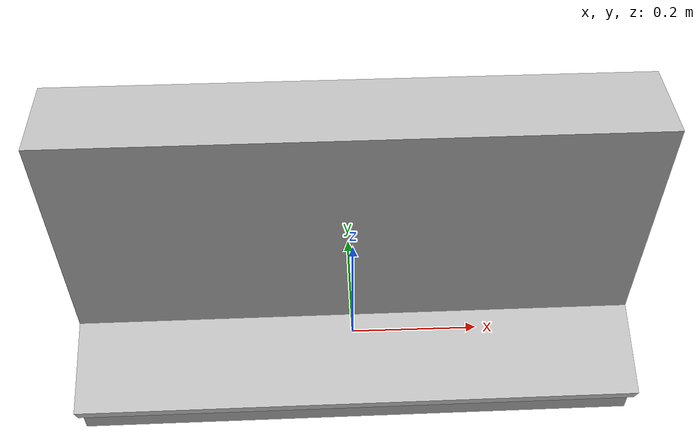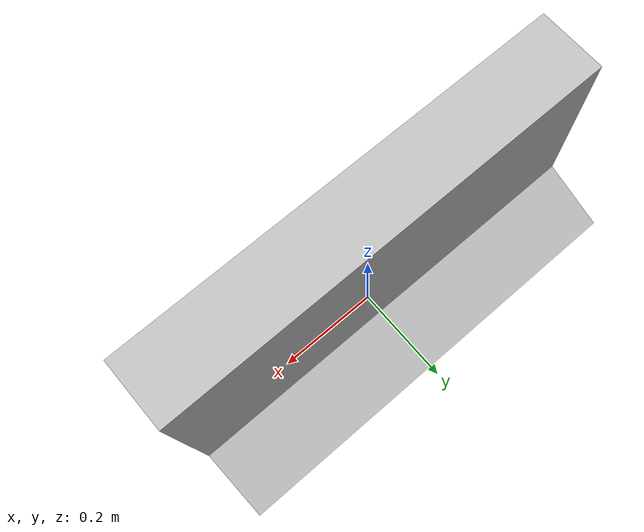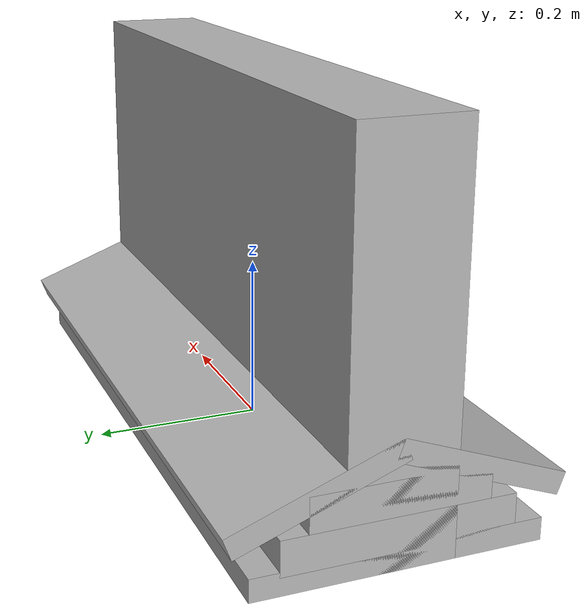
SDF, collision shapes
<?xml version="1.0" ?>
<sdf version="1.4">
  <model name="barrier_top">
    <static>true</static>
    <link name="link">
      <visual name="visual">
        <geometry>
          <mesh>
            <uri>model://jersey_barrier_small/meshes/jersey_barrier_small.dae</uri>
	    <scale> 0.2 0.4 0.4 </scale>
          </mesh>
        </geometry>
      </visual>

      <collision name="upright">
        <pose>0 0 0.2286 0 0 0</pose>
        <geometry>
          <box>
            <size>0.813084 0.12252 0.4572</size>
          </box>
        </geometry>
      </collision>

      <collision name="base">
        <pose>0 0 0.0129032 0 0 0</pose>
        <geometry>
          <box>
            <size>0.813084 0.32428 0.0258064</size>
          </box>
        </geometry>
      </collision>

      <collision name="base2">
        <pose>0 0 0.04 0 0 0</pose>
        <geometry>
          <box>
            <size>0.813084 0.26 0.04</size>
          </box>
        </geometry>
      </collision>

      <collision name="base3">
        <pose>0 0 0.08 0 0 0</pose>
        <geometry>
          <box>
            <size>0.813084 0.2 0.04</size>
          </box>
        </geometry>
      </collision>

      <collision name="left-angle">
        <pose>0 -0.0896 0.09604 0.36 0 0</pose>
        <geometry>
          <box>
            <size>0.813084 0.2 0.0258064</size>
          </box>
        </geometry>
      </collision>

      <collision name="right-angle">
        <pose>0 0.0896 0.09604 -0.36 0 0</pose>
        <geometry>
          <box>
            <size>0.813084 0.2 0.0258064</size>
          </box>
        </geometry>
      </collision>

    </link>
  </model>
</sdf>
